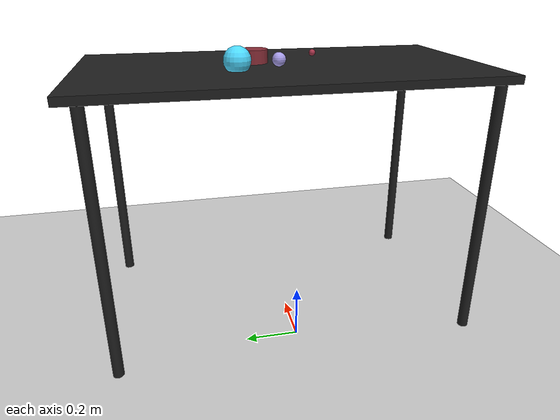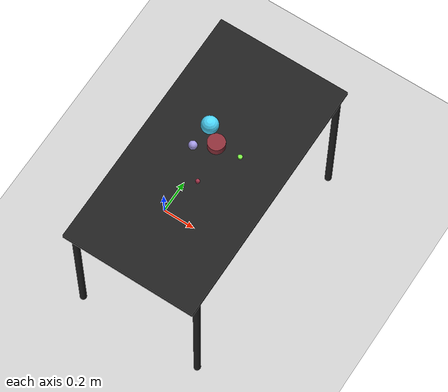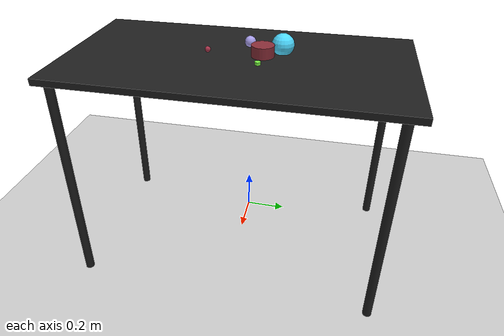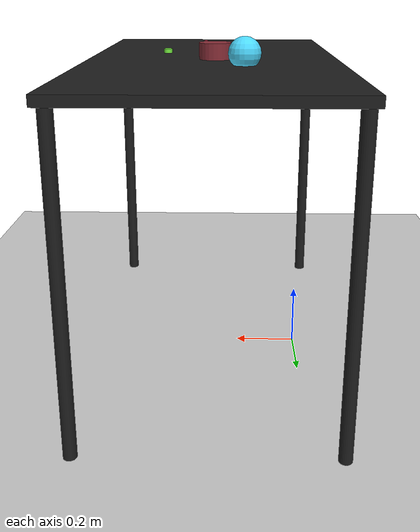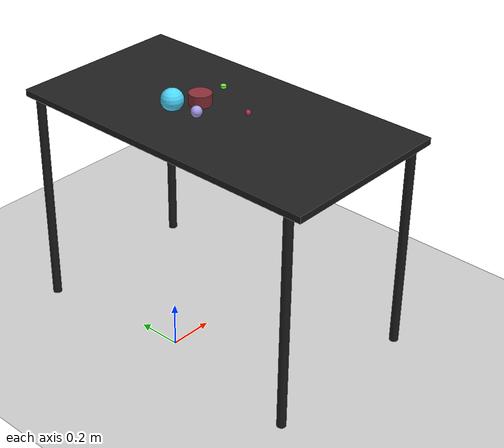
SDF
<?xml version="1.0" ?>
<sdf version="1.6">
  <world name="arm_world">
    <plugin filename="gz-sim-physics-system" name="gz::sim::systems::Physics">
      <engine>
        <filename>libgz-physics-bullet-featherstone-plugin.so</filename>
      </engine>
    </plugin>
    <plugin filename="gz-sim-user-commands-system" name="gz::sim::systems::UserCommands"/>
    <plugin filename="gz-sim-scene-broadcaster-system" name="gz::sim::systems::SceneBroadcaster"/>
    <plugin filename="gz-sim-sensors-system" name="gz::sim::systems::Sensors">
      <render_engine>ogre2</render_engine>
    </plugin>
    <gravity>0.0 0.0 -9.8</gravity>
    <scene>
      <shadows>false</shadows>
    </scene>
    <gui>
      <camera name="user_camera">
        <pose>0.75 -0.75 1.4 0 0.29 2.21</pose>
      </camera>
    </gui>
    <include>
      <uri>https://fuel.gazebosim.org/1.0/OpenRobotics/models/Sun</uri>
    </include>
    <model name="table">
      <static>true</static>
      <include>
        <uri>model://table</uri>
      </include>
      <pose>0.29 0 0 0 0 1.5708</pose>
    </model>
    <model name="ground_plane">
      <static>true</static>
      <link name="link">
        <collision name="collision">
          <geometry>
            <plane>
              <normal>0 0 1</normal>
            </plane>
          </geometry>
          <surface>
            <friction>
              <ode>
                <mu>1.0</mu>
                <mu2>1.0</mu2>
              </ode>
            </friction>
          </surface>
        </collision>
        <visual name="visual">
          <geometry>
            <plane>
              <normal>0 0 1</normal>
              <size>100 100</size>
            </plane>
          </geometry>
          <material>
            <ambient>0.8 0.8 0.8 1</ambient>
            <diffuse>0.8 0.8 0.8 1</diffuse>
            <specular>0.8 0.8 0.8 1</specular>
          </material>
        </visual>
      </link>
    </model>
    <model name="sphere_l_0">
      <pose>0.191 0.178 1.05 0 0 4.69</pose>
      <link name="sphere_l_0_link">
        <inertial>
          <mass>0.05</mass>
          <inertia>
            <ixx>2.04e-7</ixx>
            <iyy>2.04e-7</iyy>
            <izz>3.9e-8</izz>
            <ixy>0</ixy>
            <ixz>0</ixz>
            <iyz>0</iyz>
          </inertia>
        </inertial>
        <collision name="sphere_l_0_collision">
          <geometry>
            <sphere>
              <radius>0.05</radius>
            </sphere>
          </geometry>
          <surface>
            <friction>
              <ode>
                <mu>0.8</mu>
                <mu2>0.8</mu2>
                <fdir1>0 0 1</fdir1>
                <slip1>0.001</slip1>
                <slip2>0.001</slip2>
              </ode>
              <torsional>
                <coefficient>0.1</coefficient>
                <surface_radius>0.015</surface_radius>
                <use_patch_radius>true</use_patch_radius>
              </torsional>
            </friction>
            <contact>
              <ode>
                <kp>1e5</kp>
                <kd>10</kd>
                <max_vel>0.1</max_vel>
                <min_depth>0.001</min_depth>
                <soft_cfm>0.01</soft_cfm>
                <soft_erp>0.2</soft_erp>
              </ode>
            </contact>
            <bounce>
              <restitution_coefficient>0.2</restitution_coefficient>
              <threshold>0.01</threshold>
            </bounce>
          </surface>
        </collision>
        <visual name="sphere_l_0_visual">
          <geometry>
            <sphere>
              <radius>0.05</radius>
            </sphere>
          </geometry>
          <material>
            <ambient>0.3 0.85 1.0 1</ambient>
            <diffuse>0.3 0.85 1.0 1</diffuse>
          </material>
        </visual>
        <velocity_decay>
          <linear>1</linear>
          <angular>1</angular>
        </velocity_decay>
      </link>
    </model>
    <model name="sphere_s_1">
      <pose>0.315 -0.127 1.05 0 0 0.49</pose>
      <link name="sphere_s_1_link">
        <inertial>
          <mass>0.05</mass>
          <inertia>
            <ixx>2.04e-7</ixx>
            <iyy>2.04e-7</iyy>
            <izz>3.9e-8</izz>
            <ixy>0</ixy>
            <ixz>0</ixz>
            <iyz>0</iyz>
          </inertia>
        </inertial>
        <collision name="sphere_s_1_collision">
          <geometry>
            <sphere>
              <radius>0.0125</radius>
            </sphere>
          </geometry>
          <surface>
            <friction>
              <ode>
                <mu>0.8</mu>
                <mu2>0.8</mu2>
                <fdir1>0 0 1</fdir1>
                <slip1>0.001</slip1>
                <slip2>0.001</slip2>
              </ode>
              <torsional>
                <coefficient>0.1</coefficient>
                <surface_radius>0.015</surface_radius>
                <use_patch_radius>true</use_patch_radius>
              </torsional>
            </friction>
            <contact>
              <ode>
                <kp>1e5</kp>
                <kd>10</kd>
                <max_vel>0.1</max_vel>
                <min_depth>0.001</min_depth>
                <soft_cfm>0.01</soft_cfm>
                <soft_erp>0.2</soft_erp>
              </ode>
            </contact>
            <bounce>
              <restitution_coefficient>0.2</restitution_coefficient>
              <threshold>0.01</threshold>
            </bounce>
          </surface>
        </collision>
        <visual name="sphere_s_1_visual">
          <geometry>
            <sphere>
              <radius>0.0125</radius>
            </sphere>
          </geometry>
          <material>
            <ambient>0.65 0.2 0.29 1</ambient>
            <diffuse>0.65 0.2 0.29 1</diffuse>
          </material>
        </visual>
        <velocity_decay>
          <linear>1</linear>
          <angular>1</angular>
        </velocity_decay>
      </link>
    </model>
    <model name="sphere_m_2">
      <pose>0.181 0.031 1.05 0 0 5.55</pose>
      <link name="sphere_m_2_link">
        <inertial>
          <mass>0.05</mass>
          <inertia>
            <ixx>2.04e-7</ixx>
            <iyy>2.04e-7</iyy>
            <izz>3.9e-8</izz>
            <ixy>0</ixy>
            <ixz>0</ixz>
            <iyz>0</iyz>
          </inertia>
        </inertial>
        <collision name="sphere_m_2_collision">
          <geometry>
            <sphere>
              <radius>0.025</radius>
            </sphere>
          </geometry>
          <surface>
            <friction>
              <ode>
                <mu>0.8</mu>
                <mu2>0.8</mu2>
                <fdir1>0 0 1</fdir1>
                <slip1>0.001</slip1>
                <slip2>0.001</slip2>
              </ode>
              <torsional>
                <coefficient>0.1</coefficient>
                <surface_radius>0.015</surface_radius>
                <use_patch_radius>true</use_patch_radius>
              </torsional>
            </friction>
            <contact>
              <ode>
                <kp>1e5</kp>
                <kd>10</kd>
                <max_vel>0.1</max_vel>
                <min_depth>0.001</min_depth>
                <soft_cfm>0.01</soft_cfm>
                <soft_erp>0.2</soft_erp>
              </ode>
            </contact>
            <bounce>
              <restitution_coefficient>0.2</restitution_coefficient>
              <threshold>0.01</threshold>
            </bounce>
          </surface>
        </collision>
        <visual name="sphere_m_2_visual">
          <geometry>
            <sphere>
              <radius>0.025</radius>
            </sphere>
          </geometry>
          <material>
            <ambient>0.65 0.61 0.91 1</ambient>
            <diffuse>0.65 0.61 0.91 1</diffuse>
          </material>
        </visual>
        <velocity_decay>
          <linear>1</linear>
          <angular>1</angular>
        </velocity_decay>
      </link>
    </model>
    <model name="cylinder_s_3">
      <pose>0.425 0.109 1.05 0 0 3.2</pose>
      <link name="cylinder_s_3_link">
        <inertial>
          <mass>0.05</mass>
          <inertia>
            <ixx>2.04e-7</ixx>
            <iyy>2.04e-7</iyy>
            <izz>3.9e-8</izz>
            <ixy>0</ixy>
            <ixz>0</ixz>
            <iyz>0</iyz>
          </inertia>
        </inertial>
        <collision name="cylinder_s_3_collision">
          <geometry>
            <cylinder>
              <radius>0.0125</radius>
              <length>0.0125</length>
            </cylinder>
          </geometry>
          <surface>
            <friction>
              <ode>
                <mu>0.8</mu>
                <mu2>0.8</mu2>
                <fdir1>0 0 1</fdir1>
                <slip1>0.001</slip1>
                <slip2>0.001</slip2>
              </ode>
              <torsional>
                <coefficient>0.1</coefficient>
                <surface_radius>0.015</surface_radius>
                <use_patch_radius>true</use_patch_radius>
              </torsional>
            </friction>
            <contact>
              <ode>
                <kp>1e5</kp>
                <kd>10</kd>
                <max_vel>0.1</max_vel>
                <min_depth>0.001</min_depth>
                <soft_cfm>0.01</soft_cfm>
                <soft_erp>0.2</soft_erp>
              </ode>
            </contact>
            <bounce>
              <restitution_coefficient>0.2</restitution_coefficient>
              <threshold>0.01</threshold>
            </bounce>
          </surface>
        </collision>
        <visual name="cylinder_s_3_visual">
          <geometry>
            <cylinder>
              <radius>0.0125</radius>
              <length>0.0125</length>
            </cylinder>
          </geometry>
          <material>
            <ambient>0.47 0.95 0.26 1</ambient>
            <diffuse>0.47 0.95 0.26 1</diffuse>
          </material>
        </visual>
        <velocity_decay>
          <linear>1</linear>
          <angular>1</angular>
        </velocity_decay>
      </link>
    </model>
    <model name="cylinder_l_4">
      <pose>0.28 0.104 1.05 0 0 5.66</pose>
      <link name="cylinder_l_4_link">
        <inertial>
          <mass>0.05</mass>
          <inertia>
            <ixx>2.04e-7</ixx>
            <iyy>2.04e-7</iyy>
            <izz>3.9e-8</izz>
            <ixy>0</ixy>
            <ixz>0</ixz>
            <iyz>0</iyz>
          </inertia>
        </inertial>
        <collision name="cylinder_l_4_collision">
          <geometry>
            <cylinder>
              <radius>0.05</radius>
              <length>0.05</length>
            </cylinder>
          </geometry>
          <surface>
            <friction>
              <ode>
                <mu>0.8</mu>
                <mu2>0.8</mu2>
                <fdir1>0 0 1</fdir1>
                <slip1>0.001</slip1>
                <slip2>0.001</slip2>
              </ode>
              <torsional>
                <coefficient>0.1</coefficient>
                <surface_radius>0.015</surface_radius>
                <use_patch_radius>true</use_patch_radius>
              </torsional>
            </friction>
            <contact>
              <ode>
                <kp>1e5</kp>
                <kd>10</kd>
                <max_vel>0.1</max_vel>
                <min_depth>0.001</min_depth>
                <soft_cfm>0.01</soft_cfm>
                <soft_erp>0.2</soft_erp>
              </ode>
            </contact>
            <bounce>
              <restitution_coefficient>0.2</restitution_coefficient>
              <threshold>0.01</threshold>
            </bounce>
          </surface>
        </collision>
        <visual name="cylinder_l_4_visual">
          <geometry>
            <cylinder>
              <radius>0.05</radius>
              <length>0.05</length>
            </cylinder>
          </geometry>
          <material>
            <ambient>0.54 0.18 0.22 1</ambient>
            <diffuse>0.54 0.18 0.22 1</diffuse>
          </material>
        </visual>
        <velocity_decay>
          <linear>1</linear>
          <angular>1</angular>
        </velocity_decay>
      </link>
    </model>
  </world>
</sdf>

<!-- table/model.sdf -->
<sdf version="1.5">
  <model name="table">
    <static>true</static>
    <link name="link">
      <collision name="surface">
        <pose>0 0 1.0 0 0 0</pose>
        <geometry>
          <box>
            <size>1.5 0.8 0.03</size>
          </box>
        </geometry>
        <surface>
          <friction>
            <ode>
              <mu>0.6</mu>
              <mu2>0.6</mu2>
            </ode>
          </friction>
        </surface>
      </collision>
      <visual name="surface">
        <pose>0 0 1.0 0 0 0</pose>
        <geometry>
          <box>
            <size>1.5 0.8 0.03</size>
          </box>
        </geometry>
        <material>
          <script>
            <uri>file://media/materials/scripts/gazebo.material</uri>
            <name>Gazebo/Black</name>
          </script>
        </material>
      </visual>
      <collision name="front_left_leg">
        <pose>0.68 0.38 0.5 0 0 0</pose>
        <geometry>
          <cylinder>
            <radius>0.02</radius>
            <length>1.0</length>
          </cylinder>
        </geometry>
      </collision>
      <visual name="front_left_leg">
        <pose>0.68 0.38 0.5 0 0 0</pose>
        <geometry>
          <cylinder>
            <radius>0.02</radius>
            <length>1.0</length>
          </cylinder>
        </geometry>
        <material>
          <script>
            <uri>file://media/materials/scripts/gazebo.material</uri>
            <name>Gazebo/Black</name>
          </script>
        </material>
      </visual>
      <collision name="front_right_leg">
        <pose>0.68 -0.38 0.5 0 0 0</pose>
        <geometry>
          <cylinder>
            <radius>0.02</radius>
            <length>1.0</length>
          </cylinder>
        </geometry>
      </collision>
      <visual name="front_right_leg">
        <pose>0.68 -0.38 0.5 0 0 0</pose>
        <geometry>
          <cylinder>
            <radius>0.02</radius>
            <length>1.0</length>
          </cylinder>
        </geometry>
        <material>
          <script>
            <uri>file://media/materials/scripts/gazebo.material</uri>
            <name>Gazebo/Black</name>
          </script>
        </material>
      </visual>
      <collision name="back_right_leg">
        <pose>-0.68 -0.38 0.5 0 0 0</pose>
        <geometry>
          <cylinder>
            <radius>0.02</radius>
            <length>1.0</length>
          </cylinder>
        </geometry>
      </collision>
      <visual name="back_right_leg">
        <pose>-0.68 -0.38 0.5 0 0 0</pose>
        <geometry>
          <cylinder>
            <radius>0.02</radius>
            <length>1.0</length>
          </cylinder>
        </geometry>
        <material>
          <script>
            <uri>file://media/materials/scripts/gazebo.material</uri>
            <name>Gazebo/Black</name>
          </script>
        </material>
      </visual>
      <collision name="back_left_leg">
        <pose>-0.68 0.38 0.5 0 0 0</pose>
        <geometry>
          <cylinder>
            <radius>0.02</radius>
            <length>1.0</length>
          </cylinder>
        </geometry>
      </collision>
      <visual name="back_left_leg">
        <pose>-0.68 0.38 0.5 0 0 0</pose>
        <geometry>
          <cylinder>
            <radius>0.02</radius>
            <length>1.0</length>
          </cylinder>
        </geometry>
        <material>
          <script>
            <uri>file://media/materials/scripts/gazebo.material</uri>
            <name>Gazebo/Black</name>
          </script>
        </material>
      </visual>
    </link>
  </model>
</sdf>
